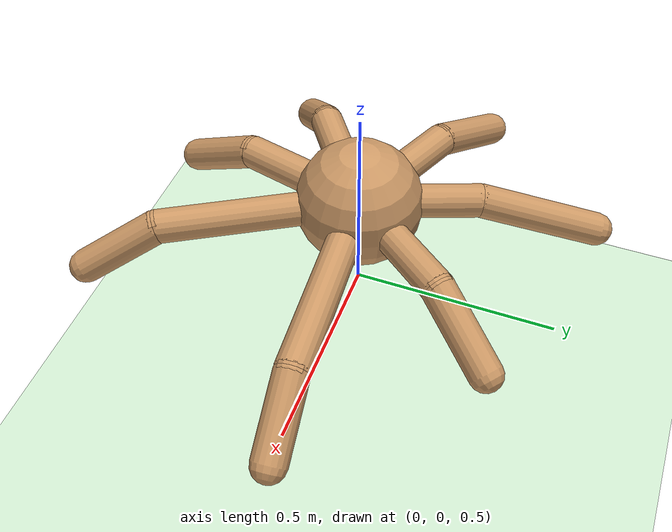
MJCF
<mujoco model="mutant_ant">
  <compiler angle="degree" coordinate="local" inertiafromgeom="true"/>
  <option integrator="RK4" timestep="0.01"/>
  <default>
    <joint armature="1" damping="1" limited="true"/>
    <geom conaffinity="1" condim="3" density="5.0" friction="1 0.5 0.5" margin="0.01" rgba="0.8 0.6 0.4 1"/>
  </default>
  <asset>
    <texture builtin="checker" height="512" name="texplane" rgb1=".2 .3 .4" rgb2=".1 0.15 0.2" type="2d" width="512"/>
    <material name="MatPlane" reflectance="0.5" shininess="1" specular="1" texrepeat="60 60" texture="texplane"/>
  </asset>
  <worldbody>
    <light cutoff="100" diffuse="1 1 1" dir="-0 0 -1.3" directional="true" exponent="1" pos="0 0 1.3" specular=".1 .1 .1"/>
    <geom conaffinity="1" condim="3" material="MatPlane" name="floor" pos="0 0 0" rgba="0.8 0.9 0.8 1" size="40 40 40" type="plane"/>
    <body name="torso" pos="0 0 0.760">
      <camera name="track" mode="trackcom" pos="0 -3 2.0" euler="60 0 0"/>
      <freejoint name="root"/>
      <geom name="torso_geom" pos="0 0 0" size="0.15" type="sphere"/>
      <body name="leg_0" pos="0 0 0" euler="0 0 4.074">
        <geom fromto="0.0 0.0 0.0 0.1 0.0 0.0" name="aux_0_geom" size="0.04" type="capsule"/>
        <body name="leg_0_aux" pos="0.1 0.0 0">
          <joint axis="0 0 1" name="hip_0" pos="0.0 0.0 0.0" range="-30.266 25.515" type="hinge"/>
          <geom fromto="0.0 0.0 0.0 0.400 0.0 0.0" name="thigh_0_geom" size="0.04" type="capsule"/>
          <body pos="0.400 0.0 0" name="leg_0_ankle">
            <joint axis="0 1 0" name="ankle_0" pos="0.0 0.0 0.0" range="24.534 68.656" type="hinge"/>
            <geom fromto="0.0 0.0 0.0 0.160 0.0 -0.1" name="calf_0_geom" size="0.04" type="capsule"/>
          </body>
        </body>
      </body>
      <body name="leg_1" pos="0 0 0" euler="0 0 52.538">
        <geom fromto="0.0 0.0 0.0 0.1 0.0 0.0" name="aux_1_geom" size="0.04" type="capsule"/>
        <body name="leg_1_aux" pos="0.1 0.0 0">
          <joint axis="0 0 1" name="hip_1" pos="0.0 0.0 0.0" range="-25.651 33.128" type="hinge"/>
          <geom fromto="0.0 0.0 0.0 0.209 0.0 0.0" name="thigh_1_geom" size="0.04" type="capsule"/>
          <body pos="0.209 0.0 0" name="leg_1_ankle">
            <joint axis="0 1 0" name="ankle_1" pos="0.0 0.0 0.0" range="28.593 60.263" type="hinge"/>
            <geom fromto="0.0 0.0 0.0 0.187 0.0 -0.1" name="calf_1_geom" size="0.04" type="capsule"/>
          </body>
        </body>
      </body>
      <body name="leg_2" pos="0 0 0" euler="0 0 110.909">
        <geom fromto="0.0 0.0 0.0 0.1 0.0 0.0" name="aux_2_geom" size="0.04" type="capsule"/>
        <body name="leg_2_aux" pos="0.1 0.0 0">
          <joint axis="0 0 1" name="hip_2" pos="0.0 0.0 0.0" range="-26.625 25.007" type="hinge"/>
          <geom fromto="0.0 0.0 0.0 0.182 0.0 0.0" name="thigh_2_geom" size="0.04" type="capsule"/>
          <body pos="0.182 0.0 0" name="leg_2_ankle">
            <joint axis="0 1 0" name="ankle_2" pos="0.0 0.0 0.0" range="29.091 70.088" type="hinge"/>
            <geom fromto="0.0 0.0 0.0 0.287 0.0 -0.1" name="calf_2_geom" size="0.04" type="capsule"/>
          </body>
        </body>
      </body>
      <body name="leg_3" pos="0 0 0" euler="0 0 156.776">
        <geom fromto="0.0 0.0 0.0 0.1 0.0 0.0" name="aux_3_geom" size="0.04" type="capsule"/>
        <body name="leg_3_aux" pos="0.1 0.0 0">
          <joint axis="0 0 1" name="hip_3" pos="0.0 0.0 0.0" range="-28.879 26.234" type="hinge"/>
          <geom fromto="0.0 0.0 0.0 0.197 0.0 0.0" name="thigh_3_geom" size="0.04" type="capsule"/>
          <body pos="0.197 0.0 0" name="leg_3_ankle">
            <joint axis="0 1 0" name="ankle_3" pos="0.0 0.0 0.0" range="34.757 74.970" type="hinge"/>
            <geom fromto="0.0 0.0 0.0 0.218 0.0 -0.1" name="calf_3_geom" size="0.04" type="capsule"/>
          </body>
        </body>
      </body>
      <body name="leg_4" pos="0 0 0" euler="0 0 215.598">
        <geom fromto="0.0 0.0 0.0 0.1 0.0 0.0" name="aux_4_geom" size="0.04" type="capsule"/>
        <body name="leg_4_aux" pos="0.1 0.0 0">
          <joint axis="0 0 1" name="hip_4" pos="0.0 0.0 0.0" range="-34.690 30.611" type="hinge"/>
          <geom fromto="0.0 0.0 0.0 0.199 0.0 0.0" name="thigh_4_geom" size="0.04" type="capsule"/>
          <body pos="0.199 0.0 0" name="leg_4_ankle">
            <joint axis="0 1 0" name="ankle_4" pos="0.0 0.0 0.0" range="48.321 100.543" type="hinge"/>
            <geom fromto="0.0 0.0 0.0 0.153 0.0 -0.1" name="calf_4_geom" size="0.04" type="capsule"/>
          </body>
        </body>
      </body>
      <body name="leg_5" pos="0 0 0" euler="0 0 256.642">
        <geom fromto="0.0 0.0 0.0 0.1 0.0 0.0" name="aux_5_geom" size="0.04" type="capsule"/>
        <body name="leg_5_aux" pos="0.1 0.0 0">
          <joint axis="0 0 1" name="hip_5" pos="0.0 0.0 0.0" range="-28.661 32.983" type="hinge"/>
          <geom fromto="0.0 0.0 0.0 0.211 0.0 0.0" name="thigh_5_geom" size="0.04" type="capsule"/>
          <body pos="0.211 0.0 0" name="leg_5_ankle">
            <joint axis="0 1 0" name="ankle_5" pos="0.0 0.0 0.0" range="41.726 87.144" type="hinge"/>
            <geom fromto="0.0 0.0 0.0 0.182 0.0 -0.1" name="calf_5_geom" size="0.04" type="capsule"/>
          </body>
        </body>
      </body>
      <body name="leg_6" pos="0 0 0" euler="0 0 300.135">
        <geom fromto="0.0 0.0 0.0 0.1 0.0 0.0" name="aux_6_geom" size="0.04" type="capsule"/>
        <body name="leg_6_aux" pos="0.1 0.0 0">
          <joint axis="0 0 1" name="hip_6" pos="0.0 0.0 0.0" range="-26.899 31.617" type="hinge"/>
          <geom fromto="0.0 0.0 0.0 0.369 0.0 0.0" name="thigh_6_geom" size="0.04" type="capsule"/>
          <body pos="0.369 0.0 0" name="leg_6_ankle">
            <joint axis="0 1 0" name="ankle_6" pos="0.0 0.0 0.0" range="28.467 94.982" type="hinge"/>
            <geom fromto="0.0 0.0 0.0 0.175 0.0 -0.1" name="calf_6_geom" size="0.04" type="capsule"/>
          </body>
        </body>
      </body>
    </body>
  </worldbody>
  <actuator>
    <motor ctrllimited="true" ctrlrange="-1.0 1.0" joint="hip_0" gear="30"/>
    <motor ctrllimited="true" ctrlrange="-1.0 1.0" joint="ankle_0" gear="30"/>
    <motor ctrllimited="true" ctrlrange="-1.0 1.0" joint="hip_1" gear="30"/>
    <motor ctrllimited="true" ctrlrange="-1.0 1.0" joint="ankle_1" gear="30"/>
    <motor ctrllimited="true" ctrlrange="-1.0 1.0" joint="hip_2" gear="30"/>
    <motor ctrllimited="true" ctrlrange="-1.0 1.0" joint="ankle_2" gear="30"/>
    <motor ctrllimited="true" ctrlrange="-1.0 1.0" joint="hip_3" gear="30"/>
    <motor ctrllimited="true" ctrlrange="-1.0 1.0" joint="ankle_3" gear="30"/>
    <motor ctrllimited="true" ctrlrange="-1.0 1.0" joint="hip_4" gear="30"/>
    <motor ctrllimited="true" ctrlrange="-1.0 1.0" joint="ankle_4" gear="30"/>
    <motor ctrllimited="true" ctrlrange="-1.0 1.0" joint="hip_5" gear="30"/>
    <motor ctrllimited="true" ctrlrange="-1.0 1.0" joint="ankle_5" gear="30"/>
    <motor ctrllimited="true" ctrlrange="-1.0 1.0" joint="hip_6" gear="30"/>
    <motor ctrllimited="true" ctrlrange="-1.0 1.0" joint="ankle_6" gear="30"/>
  </actuator>
</mujoco>
